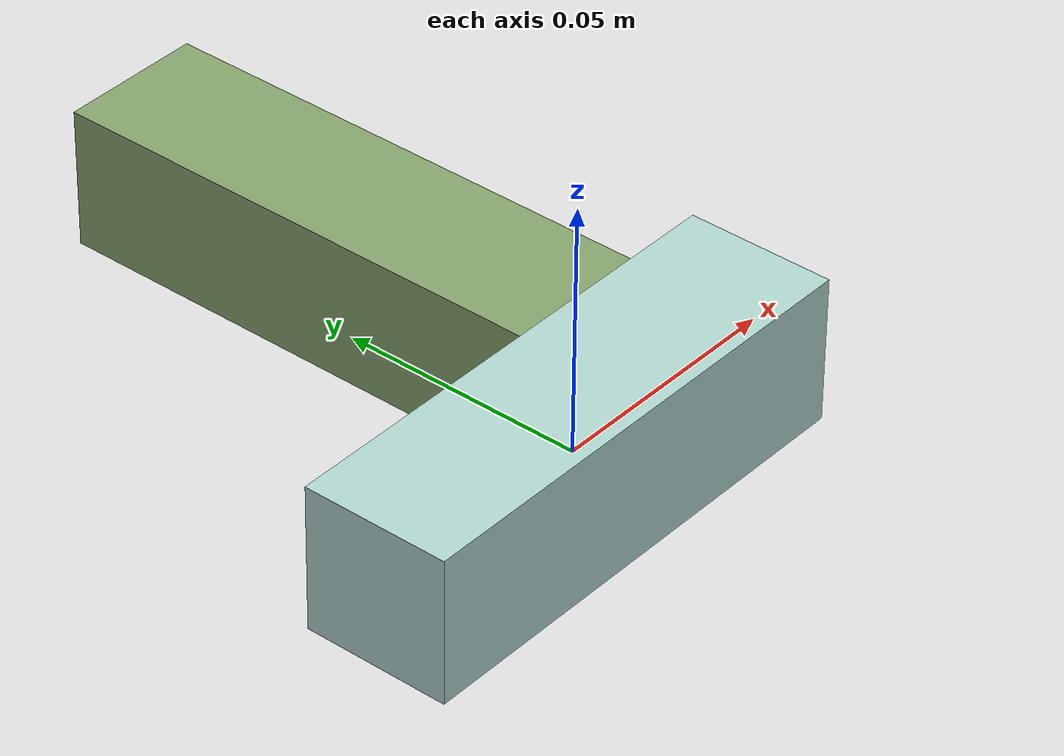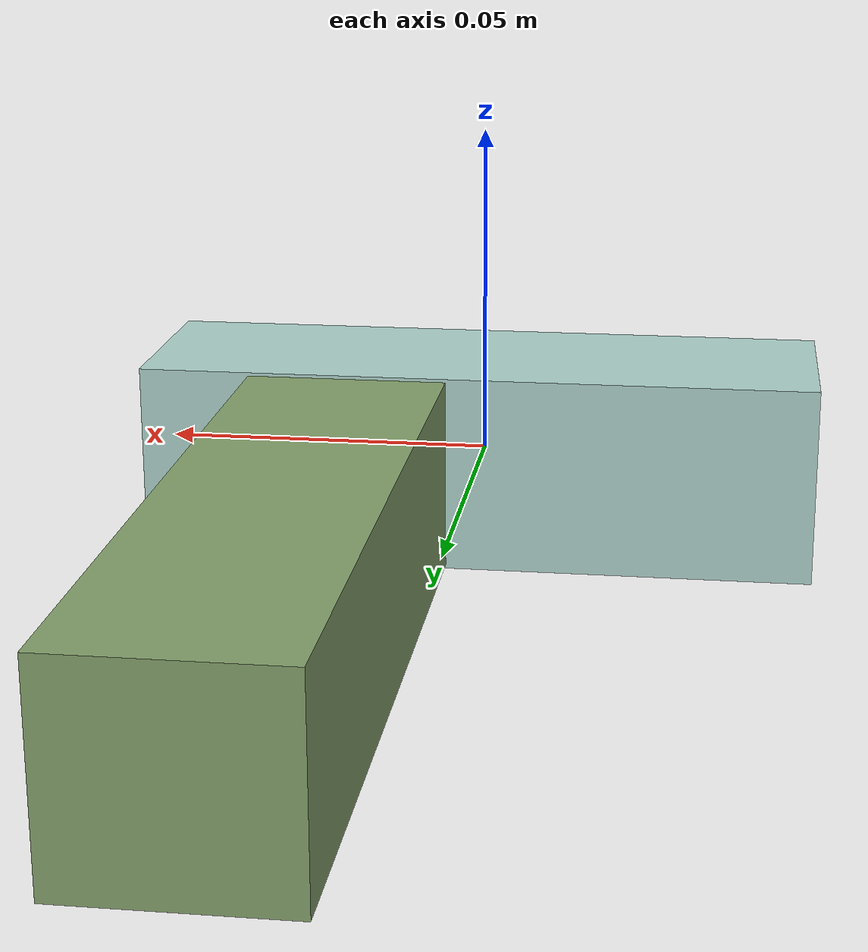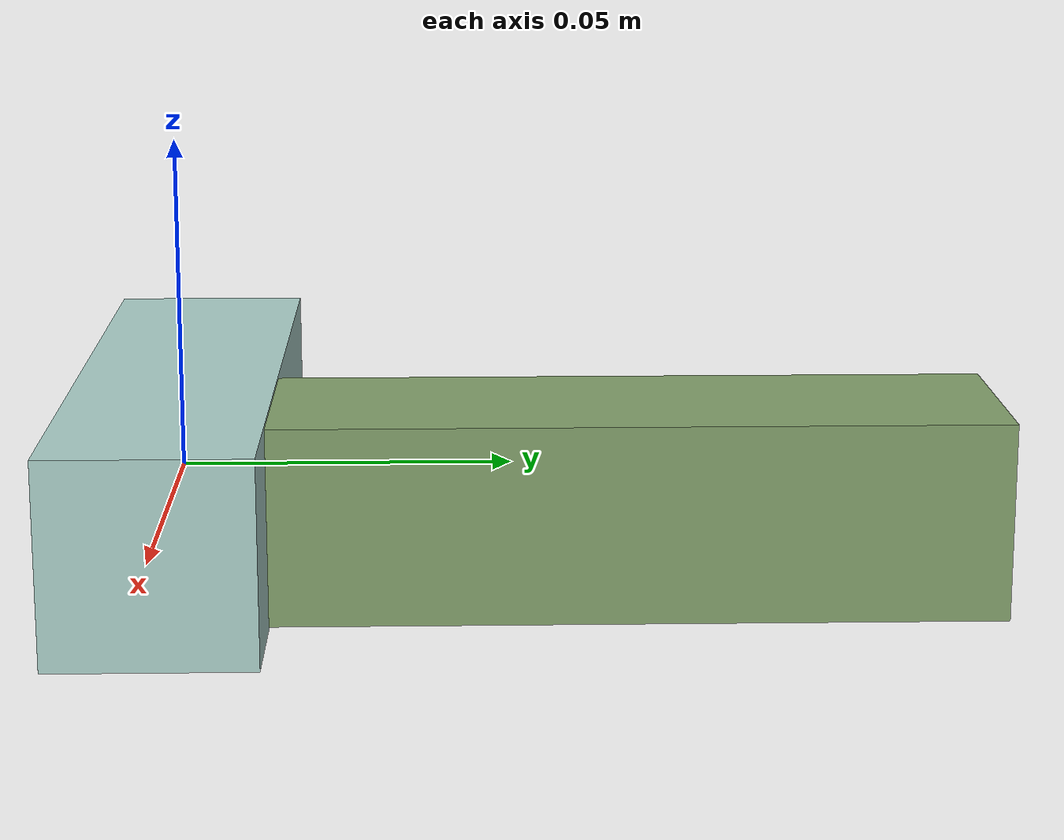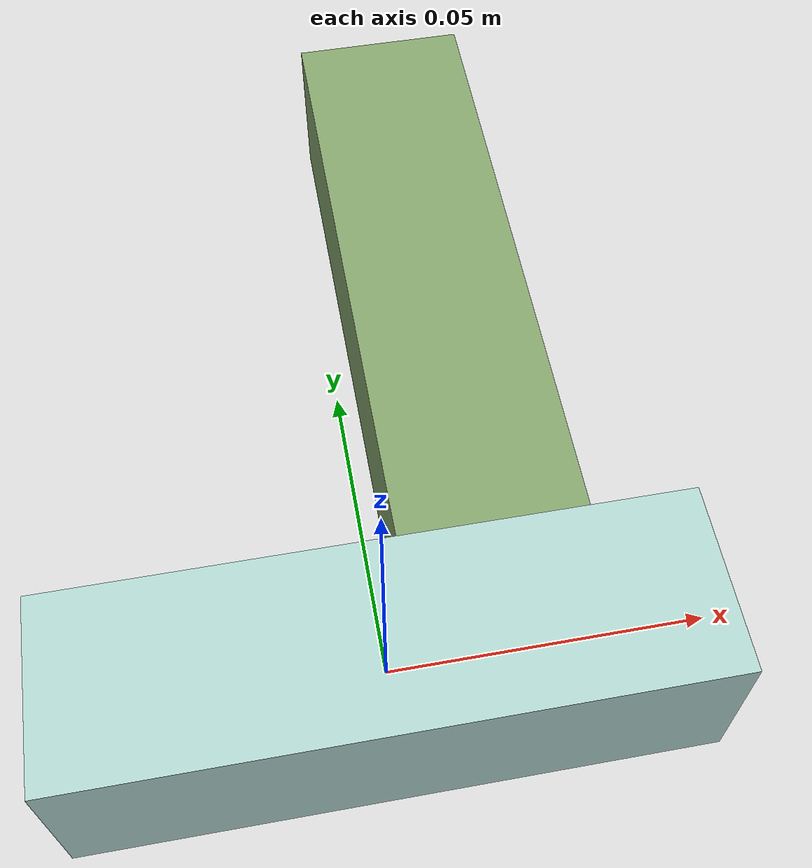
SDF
<sdf version="1.4"><world name="default"><model name="object0"><link name="link1"><pose>0 0 0 0 0 0</pose><inertial><pose>0 0 0 0 0 0</pose><mass>0.05517817658863725</mass><inertia><ixx>8.276726488295588e-06</ixx><ixy>0</ixy><iyy>5.214853597974412e-05</iyy><ixz>0</ixz><iyz>0</iyz><izz>5.214853597974412e-05</izz></inertia></inertial><visual name="link1_visual"><pose>0 0  0 0 0 0</pose><geometry><box><size>0.10218180849747639 0.03 0.03</size></box></geometry><material><diffuse>0.6855953735602575 0.8289517878290917 0.8019133800310165 1</diffuse></material></visual><collision><pose>0 0  0 0 0 0</pose><geometry><box><size>0.10218180849747639 0.03 0.03</size></box></geometry></collision></link><link name="link2"><pose>0.01922727815719822 0.06467975257558066 0 0 0 0</pose><inertial><pose>0 0 0 0 0 0</pose><mass>0.06055106978800753</mass><inertia><ixx>6.768851766470432e-05</ixx><ixy>0</ixy><iyy>8.784951041743424e-06</iyy><ixz>0</ixz><iyz>0</iyz><izz>6.798622709116202e-05</izz></inertia></inertial><visual name="link2_visual"><pose>0 0  0 0 0 0</pose><geometry><box><size>0.03 0.11213161071853249 0.028999999999999998</size></box></geometry><material><diffuse>0.5173663380164552 0.635622550532859 0.424921062034726 1</diffuse></material></visual><collision><pose>0 0  0 0 0 0</pose><geometry><box><size>0.03 0.11213161071853249 0.028999999999999998</size></box></geometry></collision></link><joint name="link_joint_0" type="fixed"><parent>link1</parent><child>link2</child><pose>0 0 0 0 0 0</pose><axis><xyz>0 0 1</xyz></axis></joint></model></world></sdf>
